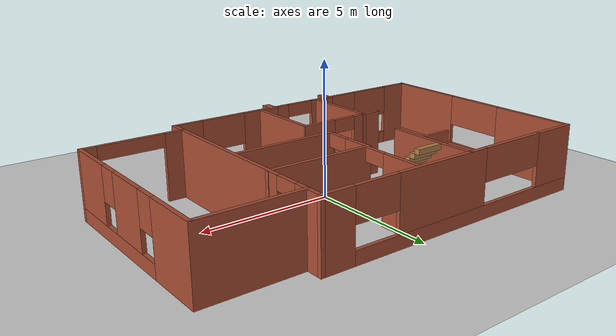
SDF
<sdf version="1.6">
 <world name="default">
  <plugin name="robotplugin" filename="libRobotPlugin.so"/>
  <light name="sun" type="directional">
   <pose>0 0 10 0 -0 0</pose>
   <diffuse>0.8 0.8 0.8 1</diffuse>
   <specular>0.2 0.2 0.2 1</specular>
   <attenuation>
    <range>1000</range>
    <constant>0.9</constant>
    <linear>0.01</linear>
    <quadratic>0.001</quadratic>
   </attenuation>
   <direction>-0.5 0.1 -0.9</direction>
  </light>
  <model name="ground_plane">
   <static>1</static>
   <link name="link">
    <collision name="collision">
     <geometry><plane><normal>0 0 1</normal><size>100 100</size></plane></geometry>
     <surface><friction><ode><mu>100</mu><mu2>50</mu2></ode></friction></surface>
    </collision>
    <visual name="visual">
     <cast_shadows>0</cast_shadows>
     <geometry><plane><normal>0 0 1</normal><size>100 100</size></plane></geometry>
     <material>
      <script><uri>file://media/materials/scripts/gazebo.material</uri><name>Gazebo/Grey</name></script>
     </material>
    </visual>
   </link>
  </model>
  <gravity>0 0 -9.8</gravity>
  <magnetic_field>6e-06 2.3e-05 -4.2e-05</magnetic_field>
  <atmosphere type="adiabatic"/>
  <physics name="default_physics" default="0" type="ode">
   <max_step_size>0.001</max_step_size>
   <real_time_factor>1</real_time_factor>
   <real_time_update_rate>1000</real_time_update_rate>
  </physics>
  <scene><ambient>0.4 0.4 0.4 1</ambient><background>0.7 0.7 0.7 1</background><shadows>1</shadows></scene>
  <spherical_coordinates>
   <surface_model>EARTH_WGS84</surface_model>
   <latitude_deg>0</latitude_deg>
   <longitude_deg>0</longitude_deg>
   <elevation>0</elevation>
   <heading_deg>0</heading_deg>
  </spherical_coordinates>
  <model name="myhome">
   <pose>0.076687 0.259312 0 0 -0 0</pose>
   <link name="Stairs_1">
    <visual name="Stairs_1_Visual_0">
     <pose>-1.59245 0.738736 0.096154 0 0 -3.14159</pose>
     <geometry><box><size>1 0.210437 0.192308</size></box></geometry>
     <material>
      <script><uri>file://media/materials/scripts/gazebo.material</uri><name>Gazebo/Wood</name></script>
      <ambient>1 1 1 1</ambient>
     </material>
     <meta><layer>0</layer></meta>
    </visual>
    <collision name="Stairs_1_Collision_0">
     <geometry><box><size>1 0.210437 0.192308</size></box></geometry>
     <pose>-1.59245 0.738736 0.096154 0 0 -3.14159</pose>
    </collision>
    <visual name="Stairs_1_Visual_1">
     <pose>-1.59245 0.949173 0.288462 0 0 -3.14159</pose>
     <geometry><box><size>1 0.210437 0.192308</size></box></geometry>
     <material>
      <script><uri>file://media/materials/scripts/gazebo.material</uri><name>Gazebo/Wood</name></script>
      <ambient>1 1 1 1</ambient>
     </material>
     <meta><layer>0</layer></meta>
    </visual>
    <collision name="Stairs_1_Collision_1">
     <geometry><box><size>1 0.210437 0.192308</size></box></geometry>
     <pose>-1.59245 0.949173 0.288462 0 0 -3.14159</pose>
    </collision>
    <visual name="Stairs_1_Visual_2">
     <pose>-1.59245 1.15961 0.480769 0 0 -3.14159</pose>
     <geometry><box><size>1 0.210437 0.192308</size></box></geometry>
     <material>
      <script><uri>file://media/materials/scripts/gazebo.material</uri><name>Gazebo/Wood</name></script>
      <ambient>1 1 1 1</ambient>
     </material>
     <meta><layer>0</layer></meta>
    </visual>
    <collision name="Stairs_1_Collision_2">
     <geometry><box><size>1 0.210437 0.192308</size></box></geometry>
     <pose>-1.59245 1.15961 0.480769 0 0 -3.14159</pose>
    </collision>
    <visual name="Stairs_1_Visual_3">
     <pose>-1.59245 1.37005 0.673077 0 0 -3.14159</pose>
     <geometry><box><size>1 0.210437 0.192308</size></box></geometry>
     <material>
      <script><uri>file://media/materials/scripts/gazebo.material</uri><name>Gazebo/Wood</name></script>
      <ambient>1 1 1 1</ambient>
     </material>
     <meta><layer>0</layer></meta>
    </visual>
    <collision name="Stairs_1_Collision_3">
     <geometry><box><size>1 0.210437 0.192308</size></box></geometry>
     <pose>-1.59245 1.37005 0.673077 0 0 -3.14159</pose>
    </collision>
    <visual name="Stairs_1_Visual_4">
     <pose>-1.59245 1.58048 0.865385 0 0 -3.14159</pose>
     <geometry><box><size>1 0.210437 0.192308</size></box></geometry>
     <material>
      <script><uri>file://media/materials/scripts/gazebo.material</uri><name>Gazebo/Wood</name></script>
      <ambient>1 1 1 1</ambient>
     </material>
     <meta><layer>0</layer></meta>
    </visual>
    <collision name="Stairs_1_Collision_4">
     <geometry><box><size>1 0.210437 0.192308</size></box></geometry>
     <pose>-1.59245 1.58048 0.865385 0 0 -3.14159</pose>
    </collision>
    <visual name="Stairs_1_Visual_5">
     <pose>-1.59245 1.79092 1.05769 0 0 -3.14159</pose>
     <geometry><box><size>1 0.210437 0.192308</size></box></geometry>
     <material>
      <script><uri>file://media/materials/scripts/gazebo.material</uri><name>Gazebo/Wood</name></script>
      <ambient>1 1 1 1</ambient>
     </material>
     <meta><layer>0</layer></meta>
    </visual>
    <collision name="Stairs_1_Collision_5">
     <geometry><box><size>1 0.210437 0.192308</size></box></geometry>
     <pose>-1.59245 1.79092 1.05769 0 0 -3.14159</pose>
    </collision>
    <visual name="Stairs_1_Visual_6">
     <pose>-1.59245 2.00136 1.25 0 0 -3.14159</pose>
     <geometry><box><size>1 0.210437 0.192308</size></box></geometry>
     <material>
      <script><uri>file://media/materials/scripts/gazebo.material</uri><name>Gazebo/Wood</name></script>
      <ambient>1 1 1 1</ambient>
     </material>
     <meta><layer>0</layer></meta>
    </visual>
    <collision name="Stairs_1_Collision_6">
     <geometry><box><size>1 0.210437 0.192308</size></box></geometry>
     <pose>-1.59245 2.00136 1.25 0 0 -3.14159</pose>
    </collision>
    <visual name="Stairs_1_Visual_7">
     <pose>-1.59245 2.2118 1.44231 0 0 -3.14159</pose>
     <geometry><box><size>1 0.210437 0.192308</size></box></geometry>
     <material>
      <script><uri>file://media/materials/scripts/gazebo.material</uri><name>Gazebo/Wood</name></script>
      <ambient>1 1 1 1</ambient>
     </material>
     <meta><layer>0</layer></meta>
    </visual>
    <collision name="Stairs_1_Collision_7">
     <geometry><box><size>1 0.210437 0.192308</size></box></geometry>
     <pose>-1.59245 2.2118 1.44231 0 0 -3.14159</pose>
    </collision>
    <visual name="Stairs_1_Visual_8">
     <pose>-1.59245 2.42223 1.63461 0 0 -3.14159</pose>
     <geometry><box><size>1 0.210437 0.192308</size></box></geometry>
     <material>
      <script><uri>file://media/materials/scripts/gazebo.material</uri><name>Gazebo/Wood</name></script>
      <ambient>1 1 1 1</ambient>
     </material>
     <meta><layer>0</layer></meta>
    </visual>
    <collision name="Stairs_1_Collision_8">
     <geometry><box><size>1 0.210437 0.192308</size></box></geometry>
     <pose>-1.59245 2.42223 1.63461 0 0 -3.14159</pose>
    </collision>
    <visual name="Stairs_1_Visual_9">
     <pose>-1.59245 2.63267 1.82692 0 0 -3.14159</pose>
     <geometry><box><size>1 0.210437 0.192308</size></box></geometry>
     <material>
      <script><uri>file://media/materials/scripts/gazebo.material</uri><name>Gazebo/Wood</name></script>
      <ambient>1 1 1 1</ambient>
     </material>
     <meta><layer>0</layer></meta>
    </visual>
    <collision name="Stairs_1_Collision_9">
     <geometry><box><size>1 0.210437 0.192308</size></box></geometry>
     <pose>-1.59245 2.63267 1.82692 0 0 -3.14159</pose>
    </collision>
    <visual name="Stairs_1_Visual_10">
     <pose>-1.59245 2.84311 2.01923 0 0 -3.14159</pose>
     <geometry><box><size>1 0.210437 0.192308</size></box></geometry>
     <material>
      <script><uri>file://media/materials/scripts/gazebo.material</uri><name>Gazebo/Wood</name></script>
      <ambient>1 1 1 1</ambient>
     </material>
     <meta><layer>0</layer></meta>
    </visual>
    <collision name="Stairs_1_Collision_10">
     <geometry><box><size>1 0.210437 0.192308</size></box></geometry>
     <pose>-1.59245 2.84311 2.01923 0 0 -3.14159</pose>
    </collision>
    <visual name="Stairs_1_Visual_11">
     <pose>-1.59245 3.05355 2.21154 0 0 -3.14159</pose>
     <geometry><box><size>1 0.210437 0.192308</size></box></geometry>
     <material>
      <script><uri>file://media/materials/scripts/gazebo.material</uri><name>Gazebo/Wood</name></script>
      <ambient>1 1 1 1</ambient>
     </material>
     <meta><layer>0</layer></meta>
    </visual>
    <collision name="Stairs_1_Collision_11">
     <geometry><box><size>1 0.210437 0.192308</size></box></geometry>
     <pose>-1.59245 3.05355 2.21154 0 0 -3.14159</pose>
    </collision>
    <visual name="Stairs_1_Visual_12">
     <pose>-1.59245 3.26398 2.40385 0 0 -3.14159</pose>
     <geometry><box><size>1 0.210437 0.192308</size></box></geometry>
     <material>
      <script><uri>file://media/materials/scripts/gazebo.material</uri><name>Gazebo/Wood</name></script>
      <ambient>1 1 1 1</ambient>
     </material>
     <meta><layer>0</layer></meta>
    </visual>
    <collision name="Stairs_1_Collision_12">
     <geometry><box><size>1 0.210437 0.192308</size></box></geometry>
     <pose>-1.59245 3.26398 2.40385 0 0 -3.14159</pose>
    </collision>
   </link>
   <link name="Wall_0">
    <pose>-7.35706 0.221072 0 0 0 -1.5708</pose>
    <visual name="Wall_0_Visual_0">
     <pose>-2.75946 0 1.25 0 -0 0</pose>
     <geometry><box><size>3.23108 0.15 2.5</size></box></geometry>
     <material>
      <script><uri>file://media/materials/scripts/gazebo.material</uri><name>Gazebo/Bricks</name></script>
      <ambient>1 1 1 1</ambient>
     </material>
     <meta><layer>0</layer></meta>
    </visual>
    <collision name="Wall_0_Collision_0">
     <geometry><box><size>3.23108 0.15 2.5</size></box></geometry>
     <pose>-2.75946 0 1.25 0 -0 0</pose>
    </collision>
    <visual name="Wall_0_Visual_1">
     <pose>1.61554 0 0.25 0 -0 0</pose>
     <geometry><box><size>5.51892 0.15 0.5</size></box></geometry>
     <material>
      <script><uri>file://media/materials/scripts/gazebo.material</uri><name>Gazebo/Bricks</name></script>
      <ambient>1 1 1 1</ambient>
     </material>
     <meta><layer>0</layer></meta>
    </visual>
    <collision name="Wall_0_Collision_1">
     <geometry><box><size>5.51892 0.15 0.5</size></box></geometry>
     <pose>1.61554 0 0.25 0 -0 0</pose>
    </collision>
    <visual name="Wall_0_Visual_2">
     <pose>2.7892 0 1.5 0 -0 0</pose>
     <geometry><box><size>3.1716 0.15 2</size></box></geometry>
     <material>
      <script><uri>file://media/materials/scripts/gazebo.material</uri><name>Gazebo/Bricks</name></script>
      <ambient>1 1 1 1</ambient>
     </material>
     <meta><layer>0</layer></meta>
    </visual>
    <collision name="Wall_0_Collision_2">
     <geometry><box><size>3.1716 0.15 2</size></box></geometry>
     <pose>2.7892 0 1.5 0 -0 0</pose>
    </collision>
    <visual name="Wall_0_Visual_3">
     <pose>0.029742 0 1.9 0 -0 0</pose>
     <geometry><box><size>2.34733 0.15 1.2</size></box></geometry>
     <material>
      <script><uri>file://media/materials/scripts/gazebo.material</uri><name>Gazebo/Bricks</name></script>
      <ambient>1 1 1 1</ambient>
     </material>
     <meta><layer>0</layer></meta>
    </visual>
    <collision name="Wall_0_Collision_3">
     <geometry><box><size>2.34733 0.15 1.2</size></box></geometry>
     <pose>0.029742 0 1.9 0 -0 0</pose>
    </collision>
   </link>
   <link name="Wall_1">
    <pose>-1.80706 -4.07893 0 0 -0 0</pose>
    <visual name="Wall_1_Visual_0">
     <pose>-5.03191 0 1.25 0 -0 0</pose>
     <geometry><box><size>1.18618 0.15 2.5</size></box></geometry>
     <material>
      <script><uri>file://media/materials/scripts/gazebo.material</uri><name>Gazebo/Bricks</name></script>
      <ambient>1 1 1 1</ambient>
     </material>
     <meta><layer>0</layer></meta>
    </visual>
    <collision name="Wall_1_Collision_0">
     <geometry><box><size>1.18618 0.15 2.5</size></box></geometry>
     <pose>-5.03191 0 1.25 0 -0 0</pose>
    </collision>
    <visual name="Wall_1_Visual_1">
     <pose>1.66015 0 1.25 0 -0 0</pose>
     <geometry><box><size>2.04206 0.15 2.5</size></box></geometry>
     <material>
      <script><uri>file://media/materials/scripts/gazebo.material</uri><name>Gazebo/Bricks</name></script>
      <ambient>1 1 1 1</ambient>
     </material>
     <meta><layer>0</layer></meta>
    </visual>
    <collision name="Wall_1_Collision_1">
     <geometry><box><size>2.04206 0.15 2.5</size></box></geometry>
     <pose>1.66015 0 1.25 0 -0 0</pose>
    </collision>
    <visual name="Wall_1_Visual_2">
     <pose>-2.46492 0 0.25 0 -0 0</pose>
     <geometry><box><size>3.94781 0.15 0.5</size></box></geometry>
     <material>
      <script><uri>file://media/materials/scripts/gazebo.material</uri><name>Gazebo/Bricks</name></script>
      <ambient>1 1 1 1</ambient>
     </material>
     <meta><layer>0</layer></meta>
    </visual>
    <collision name="Wall_1_Collision_2">
     <geometry><box><size>3.94781 0.15 0.5</size></box></geometry>
     <pose>-2.46492 0 0.25 0 -0 0</pose>
    </collision>
    <visual name="Wall_1_Visual_3">
     <pose>4.15309 0 0.25 0 -0 0</pose>
     <geometry><box><size>2.94382 0.15 0.5</size></box></geometry>
     <material>
      <script><uri>file://media/materials/scripts/gazebo.material</uri><name>Gazebo/Bricks</name></script>
      <ambient>1 1 1 1</ambient>
     </material>
     <meta><layer>0</layer></meta>
    </visual>
    <collision name="Wall_1_Collision_3">
     <geometry><box><size>2.94382 0.15 0.5</size></box></geometry>
     <pose>4.15309 0 0.25 0 -0 0</pose>
    </collision>
    <visual name="Wall_1_Visual_4">
     <pose>-1.61492 0 1.5 0 -0 0</pose>
     <geometry><box><size>2.24781 0.15 2</size></box></geometry>
     <material>
      <script><uri>file://media/materials/scripts/gazebo.material</uri><name>Gazebo/Bricks</name></script>
      <ambient>1 1 1 1</ambient>
     </material>
     <meta><layer>0</layer></meta>
    </visual>
    <collision name="Wall_1_Collision_4">
     <geometry><box><size>2.24781 0.15 2</size></box></geometry>
     <pose>-1.61492 0 1.5 0 -0 0</pose>
    </collision>
    <visual name="Wall_1_Visual_5">
     <pose>-1.61492 0 1.5 0 -0 0</pose>
     <geometry><box><size>2.24781 0.15 2</size></box></geometry>
     <material>
      <script><uri>file://media/materials/scripts/gazebo.material</uri><name>Gazebo/Bricks</name></script>
      <ambient>1 1 1 1</ambient>
     </material>
     <meta><layer>0</layer></meta>
    </visual>
    <collision name="Wall_1_Collision_5">
     <geometry><box><size>2.24781 0.15 2</size></box></geometry>
     <pose>-1.61492 0 1.5 0 -0 0</pose>
    </collision>
    <visual name="Wall_1_Visual_6">
     <pose>5.03809 0 1.5 0 -0 0</pose>
     <geometry><box><size>1.17382 0.15 2</size></box></geometry>
     <material>
      <script><uri>file://media/materials/scripts/gazebo.material</uri><name>Gazebo/Bricks</name></script>
      <ambient>1 1 1 1</ambient>
     </material>
     <meta><layer>0</layer></meta>
    </visual>
    <collision name="Wall_1_Collision_6">
     <geometry><box><size>1.17382 0.15 2</size></box></geometry>
     <pose>5.03809 0 1.5 0 -0 0</pose>
    </collision>
    <visual name="Wall_1_Visual_7">
     <pose>-3.58882 0 1.9 0 -0 0</pose>
     <geometry><box><size>1.7 0.15 1.2</size></box></geometry>
     <material>
      <script><uri>file://media/materials/scripts/gazebo.material</uri><name>Gazebo/Bricks</name></script>
      <ambient>1 1 1 1</ambient>
     </material>
     <meta><layer>0</layer></meta>
    </visual>
    <collision name="Wall_1_Collision_7">
     <geometry><box><size>1.7 0.15 1.2</size></box></geometry>
     <pose>-3.58882 0 1.9 0 -0 0</pose>
    </collision>
    <visual name="Wall_1_Visual_8">
     <pose>3.56618 0 1.9 0 -0 0</pose>
     <geometry><box><size>1.77 0.15 1.2</size></box></geometry>
     <material>
      <script><uri>file://media/materials/scripts/gazebo.material</uri><name>Gazebo/Bricks</name></script>
      <ambient>1 1 1 1</ambient>
     </material>
     <meta><layer>0</layer></meta>
    </visual>
    <collision name="Wall_1_Collision_8">
     <geometry><box><size>1.77 0.15 1.2</size></box></geometry>
     <pose>3.56618 0 1.9 0 -0 0</pose>
    </collision>
    <visual name="Wall_1_Visual_9">
     <pose>0.074052 0 2.25 0 -0 0</pose>
     <geometry><box><size>1.13013 0.15 0.5</size></box></geometry>
     <material>
      <script><uri>file://media/materials/scripts/gazebo.material</uri><name>Gazebo/Bricks</name></script>
      <ambient>1 1 1 1</ambient>
     </material>
     <meta><layer>0</layer></meta>
    </visual>
    <collision name="Wall_1_Collision_9">
     <geometry><box><size>1.13013 0.15 0.5</size></box></geometry>
     <pose>0.074052 0 2.25 0 -0 0</pose>
    </collision>
    <visual name="Wall_1_Visual_10">
     <pose>0.074052 0 2.25 0 -0 0</pose>
     <geometry><box><size>1.13013 0.15 0.5</size></box></geometry>
     <material>
      <script><uri>file://media/materials/scripts/gazebo.material</uri><name>Gazebo/Bricks</name></script>
      <ambient>1 1 1 1</ambient>
     </material>
     <meta><layer>0</layer></meta>
    </visual>
    <collision name="Wall_1_Collision_10">
     <geometry><box><size>1.13013 0.15 0.5</size></box></geometry>
     <pose>0.074052 0 2.25 0 -0 0</pose>
    </collision>
   </link>
   <link name="Wall_11">
    <collision name="Wall_11_Collision">
     <geometry><box><size>4 0.15 2.5</size></box></geometry>
     <pose>0 0 1.25 0 -0 0</pose>
    </collision>
    <visual name="Wall_11_Visual">
     <pose>0 0 1.25 0 -0 0</pose>
     <geometry><box><size>4 0.15 2.5</size></box></geometry>
     <material>
      <script><uri>file://media/materials/scripts/gazebo.material</uri><name>Gazebo/Bricks</name></script>
      <ambient>1 1 1 1</ambient>
     </material>
     <meta><layer>0</layer></meta>
    </visual>
    <pose>1.83721 2.0059 0 0 -0 3.14159</pose>
   </link>
   <link name="Wall_12">
    <pose>-0.087787 1.0809 0 0 0 -1.5708</pose>
    <visual name="Wall_12_Visual_0">
     <pose>-0.434317 0 1.25 0 -0 0</pose>
     <geometry><box><size>1.13137 0.15 2.5</size></box></geometry>
     <material>
      <script><uri>file://media/materials/scripts/gazebo.material</uri><name>Gazebo/Bricks</name></script>
      <ambient>1 1 1 1</ambient>
     </material>
     <meta><layer>0</layer></meta>
    </visual>
    <collision name="Wall_12_Collision_0">
     <geometry><box><size>1.13137 0.15 2.5</size></box></geometry>
     <pose>-0.434317 0 1.25 0 -0 0</pose>
    </collision>
    <visual name="Wall_12_Visual_1">
     <pose>0.565683 0 2.25 0 -0 0</pose>
     <geometry><box><size>0.868634 0.15 0.5</size></box></geometry>
     <material>
      <script><uri>file://media/materials/scripts/gazebo.material</uri><name>Gazebo/Bricks</name></script>
      <ambient>1 1 1 1</ambient>
     </material>
     <meta><layer>0</layer></meta>
    </visual>
    <collision name="Wall_12_Collision_1">
     <geometry><box><size>0.868634 0.15 0.5</size></box></geometry>
     <pose>0.565683 0 2.25 0 -0 0</pose>
    </collision>
   </link>
   <link name="Wall_16">
    <collision name="Wall_16_Collision">
     <geometry><box><size>3.5 0.15 2.5</size></box></geometry>
     <pose>0 0 1.25 0 -0 0</pose>
    </collision>
    <visual name="Wall_16_Visual">
     <pose>0 0 1.25 0 -0 0</pose>
     <geometry><box><size>3.5 0.15 2.5</size></box></geometry>
     <material>
      <script><uri>file://media/materials/scripts/gazebo.material</uri><name>Gazebo/Bricks</name></script>
      <ambient>1 1 1 1</ambient>
     </material>
     <meta><layer>0</layer></meta>
    </visual>
    <pose>-2.20226 2.84365 0 0 0 -1.5708</pose>
   </link>
   <link name="Wall_18">
    <collision name="Wall_18_Collision">
     <geometry><box><size>3 0.15 1</size></box></geometry>
     <pose>0 0 0.5 0 -0 0</pose>
    </collision>
    <visual name="Wall_18_Visual">
     <pose>0 0 0.5 0 -0 0</pose>
     <geometry><box><size>3 0.15 1</size></box></geometry>
     <material>
      <script><uri>file://media/materials/scripts/gazebo.material</uri><name>Gazebo/Bricks</name></script>
      <ambient>1 1 1 1</ambient>
     </material>
     <meta><layer>0</layer></meta>
    </visual>
    <pose>-5.93869 -1.15731 0 0 -0 0</pose>
   </link>
   <link name="Wall_2">
    <pose>3.74294 0.221072 0 0 -0 1.5708</pose>
    <visual name="Wall_2_Visual_0">
     <pose>-1.04791 0 1.25 0 -0 0</pose>
     <geometry><box><size>6.65418 0.15 2.5</size></box></geometry>
     <material>
      <script><uri>file://media/materials/scripts/gazebo.material</uri><name>Gazebo/Bricks</name></script>
      <ambient>1 1 1 1</ambient>
     </material>
     <meta><layer>0</layer></meta>
    </visual>
    <collision name="Wall_2_Collision_0">
     <geometry><box><size>6.65418 0.15 2.5</size></box></geometry>
     <pose>-1.04791 0 1.25 0 -0 0</pose>
    </collision>
    <visual name="Wall_2_Visual_1">
     <pose>3.77709 0 1.25 0 -0 0</pose>
     <geometry><box><size>1.19582 0.15 2.5</size></box></geometry>
     <material>
      <script><uri>file://media/materials/scripts/gazebo.material</uri><name>Gazebo/Bricks</name></script>
      <ambient>1 1 1 1</ambient>
     </material>
     <meta><layer>0</layer></meta>
    </visual>
    <collision name="Wall_2_Collision_1">
     <geometry><box><size>1.19582 0.15 2.5</size></box></geometry>
     <pose>3.77709 0 1.25 0 -0 0</pose>
    </collision>
    <visual name="Wall_2_Visual_2">
     <pose>2.72918 0 2.25 0 -0 0</pose>
     <geometry><box><size>0.9 0.15 0.5</size></box></geometry>
     <material>
      <script><uri>file://media/materials/scripts/gazebo.material</uri><name>Gazebo/Bricks</name></script>
      <ambient>1 1 1 1</ambient>
     </material>
     <meta><layer>0</layer></meta>
    </visual>
    <collision name="Wall_2_Collision_2">
     <geometry><box><size>0.9 0.15 0.5</size></box></geometry>
     <pose>2.72918 0 2.25 0 -0 0</pose>
    </collision>
   </link>
   <link name="Wall_20">
    <pose>-1.57843 -1.1575 0 0 -0 0</pose>
    <visual name="Wall_20_Visual_0">
     <pose>-1.13105 0 1.25 0 -0 0</pose>
     <geometry><box><size>1.2379 0.15 2.5</size></box></geometry>
     <material>
      <script><uri>file://media/materials/scripts/gazebo.material</uri><name>Gazebo/Bricks</name></script>
      <ambient>1 1 1 1</ambient>
     </material>
     <meta><layer>0</layer></meta>
    </visual>
    <collision name="Wall_20_Collision_0">
     <geometry><box><size>1.2379 0.15 2.5</size></box></geometry>
     <pose>-1.13105 0 1.25 0 -0 0</pose>
    </collision>
    <visual name="Wall_20_Visual_1">
     <pose>1.06895 0 1.25 0 -0 0</pose>
     <geometry><box><size>1.3621 0.15 2.5</size></box></geometry>
     <material>
      <script><uri>file://media/materials/scripts/gazebo.material</uri><name>Gazebo/Bricks</name></script>
      <ambient>1 1 1 1</ambient>
     </material>
     <meta><layer>0</layer></meta>
    </visual>
    <collision name="Wall_20_Collision_1">
     <geometry><box><size>1.3621 0.15 2.5</size></box></geometry>
     <pose>1.06895 0 1.25 0 -0 0</pose>
    </collision>
    <visual name="Wall_20_Visual_2">
     <pose>-0.062103 0 2.25 0 -0 0</pose>
     <geometry><box><size>0.9 0.15 0.5</size></box></geometry>
     <material>
      <script><uri>file://media/materials/scripts/gazebo.material</uri><name>Gazebo/Bricks</name></script>
      <ambient>1 1 1 1</ambient>
     </material>
     <meta><layer>0</layer></meta>
    </visual>
    <collision name="Wall_20_Collision_2">
     <geometry><box><size>0.9 0.15 0.5</size></box></geometry>
     <pose>-0.062103 0 2.25 0 -0 0</pose>
    </collision>
   </link>
   <link name="Wall_22">
    <collision name="Wall_22_Collision">
     <geometry><box><size>3 0.15 2.5</size></box></geometry>
     <pose>0 0 1.25 0 -0 0</pose>
    </collision>
    <visual name="Wall_22_Visual">
     <pose>0 0 1.25 0 -0 0</pose>
     <geometry><box><size>3 0.15 2.5</size></box></geometry>
     <material>
      <script><uri>file://media/materials/scripts/gazebo.material</uri><name>Gazebo/Bricks</name></script>
      <ambient>1 1 1 1</ambient>
     </material>
     <meta><layer>0</layer></meta>
    </visual>
    <pose>-2.58881 -2.54752 0 0 0 -1.5708</pose>
   </link>
   <link name="Wall_24">
    <collision name="Wall_24_Collision">
     <geometry><box><size>0.64952 0.3 2.5</size></box></geometry>
     <pose>0 0 1.25 0 -0 0</pose>
    </collision>
    <visual name="Wall_24_Visual">
     <pose>0 0 1.25 0 -0 0</pose>
     <geometry><box><size>0.64952 0.3 2.5</size></box></geometry>
     <material>
      <script><uri>file://media/materials/scripts/gazebo.material</uri><name>Gazebo/Bricks</name></script>
      <ambient>1 1 1 1</ambient>
     </material>
     <meta><layer>0</layer></meta>
    </visual>
    <pose>-3.18369 -4.27131 0 0 0 -1.5708</pose>
   </link>
   <link name="Wall_26">
    <collision name="Wall_26_Collision">
     <geometry><box><size>0.65003 0.3 2.5</size></box></geometry>
     <pose>0 0 1.25 0 -0 0</pose>
    </collision>
    <visual name="Wall_26_Visual">
     <pose>0 0 1.25 0 -0 0</pose>
     <geometry><box><size>0.65003 0.3 2.5</size></box></geometry>
     <material>
      <script><uri>file://media/materials/scripts/gazebo.material</uri><name>Gazebo/Bricks</name></script>
      <ambient>1 1 1 1</ambient>
     </material>
     <meta><layer>0</layer></meta>
    </visual>
    <pose>-0.454687 -4.25331 0 0 0 -1.5708</pose>
   </link>
   <link name="Wall_3">
    <pose>-1.80706 4.52107 0 0 -0 3.14159</pose>
    <visual name="Wall_3_Visual_0">
     <pose>-5.00476 0 1.25 0 -0 0</pose>
     <geometry><box><size>1.24049 0.15 2.5</size></box></geometry>
     <material>
      <script><uri>file://media/materials/scripts/gazebo.material</uri><name>Gazebo/Bricks</name></script>
      <ambient>1 1 1 1</ambient>
     </material>
     <meta><layer>0</layer></meta>
    </visual>
    <collision name="Wall_3_Collision_0">
     <geometry><box><size>1.24049 0.15 2.5</size></box></geometry>
     <pose>-5.00476 0 1.25 0 -0 0</pose>
    </collision>
    <visual name="Wall_3_Visual_1">
     <pose>0.620243 0 0.25 0 -0 0</pose>
     <geometry><box><size>10.0095 0.15 0.5</size></box></geometry>
     <material>
      <script><uri>file://media/materials/scripts/gazebo.material</uri><name>Gazebo/Bricks</name></script>
      <ambient>1 1 1 1</ambient>
     </material>
     <meta><layer>0</layer></meta>
    </visual>
    <collision name="Wall_3_Collision_1">
     <geometry><box><size>10.0095 0.15 0.5</size></box></geometry>
     <pose>0.620243 0 0.25 0 -0 0</pose>
    </collision>
    <visual name="Wall_3_Visual_2">
     <pose>-0.760259 0 1.5 0 -0 0</pose>
     <geometry><box><size>3.82346 0.15 2</size></box></geometry>
     <material>
      <script><uri>file://media/materials/scripts/gazebo.material</uri><name>Gazebo/Bricks</name></script>
      <ambient>1 1 1 1</ambient>
     </material>
     <meta><layer>0</layer></meta>
    </visual>
    <collision name="Wall_3_Collision_2">
     <geometry><box><size>3.82346 0.15 2</size></box></geometry>
     <pose>-0.760259 0 1.5 0 -0 0</pose>
    </collision>
    <visual name="Wall_3_Visual_3">
     <pose>4.74639 0 1.5 0 -0 0</pose>
     <geometry><box><size>1.75723 0.15 2</size></box></geometry>
     <material>
      <script><uri>file://media/materials/scripts/gazebo.material</uri><name>Gazebo/Bricks</name></script>
      <ambient>1 1 1 1</ambient>
     </material>
     <meta><layer>0</layer></meta>
    </visual>
    <collision name="Wall_3_Collision_3">
     <geometry><box><size>1.75723 0.15 2</size></box></geometry>
     <pose>4.74639 0 1.5 0 -0 0</pose>
    </collision>
    <visual name="Wall_3_Visual_4">
     <pose>-3.52825 0 1.9 0 -0 0</pose>
     <geometry><box><size>1.71253 0.15 1.2</size></box></geometry>
     <material>
      <script><uri>file://media/materials/scripts/gazebo.material</uri><name>Gazebo/Bricks</name></script>
      <ambient>1 1 1 1</ambient>
     </material>
     <meta><layer>0</layer></meta>
    </visual>
    <collision name="Wall_3_Collision_4">
     <geometry><box><size>1.71253 0.15 1.2</size></box></geometry>
     <pose>-3.52825 0 1.9 0 -0 0</pose>
    </collision>
    <visual name="Wall_3_Visual_5">
     <pose>2.50962 0 1.9 0 -0 0</pose>
     <geometry><box><size>2.7163 0.15 1.2</size></box></geometry>
     <material>
      <script><uri>file://media/materials/scripts/gazebo.material</uri><name>Gazebo/Bricks</name></script>
      <ambient>1 1 1 1</ambient>
     </material>
     <meta><layer>0</layer></meta>
    </visual>
    <collision name="Wall_3_Collision_5">
     <geometry><box><size>2.7163 0.15 1.2</size></box></geometry>
     <pose>2.50962 0 1.9 0 -0 0</pose>
    </collision>
   </link>
   <link name="Wall_30">
    <collision name="Wall_30_Collision">
     <geometry><box><size>3 0.15 2.5</size></box></geometry>
     <pose>0 0 1.25 0 -0 0</pose>
    </collision>
    <visual name="Wall_30_Visual">
     <pose>0 0 1.25 0 -0 0</pose>
     <geometry><box><size>3 0.15 2.5</size></box></geometry>
     <material>
      <script><uri>file://media/materials/scripts/gazebo.material</uri><name>Gazebo/Bricks</name></script>
      <ambient>1 1 1 1</ambient>
     </material>
     <meta><layer>0</layer></meta>
    </visual>
    <pose>0.102788 -2.63497 0 0 0 -1.5708</pose>
   </link>
   <link name="Wall_32">
    <pose>-0.010979 3.33187 0 0 0 -1.5708</pose>
    <visual name="Wall_32_Visual_0">
     <pose>-0.423076 0 1.25 0 -0 0</pose>
     <geometry><box><size>1.65385 0.15 2.5</size></box></geometry>
     <material>
      <script><uri>file://media/materials/scripts/gazebo.material</uri><name>Gazebo/Bricks</name></script>
      <ambient>1 1 1 1</ambient>
     </material>
     <meta><layer>0</layer></meta>
    </visual>
    <collision name="Wall_32_Collision_0">
     <geometry><box><size>1.65385 0.15 2.5</size></box></geometry>
     <pose>-0.423076 0 1.25 0 -0 0</pose>
    </collision>
    <visual name="Wall_32_Visual_1">
     <pose>0.826924 0 2.25 0 -0 0</pose>
     <geometry><box><size>0.846153 0.15 0.5</size></box></geometry>
     <material>
      <script><uri>file://media/materials/scripts/gazebo.material</uri><name>Gazebo/Bricks</name></script>
      <ambient>1 1 1 1</ambient>
     </material>
     <meta><layer>0</layer></meta>
    </visual>
    <collision name="Wall_32_Collision_1">
     <geometry><box><size>0.846153 0.15 0.5</size></box></geometry>
     <pose>0.826924 0 2.25 0 -0 0</pose>
    </collision>
   </link>
   <link name="Wall_5">
    <collision name="Wall_5_Collision">
     <geometry><box><size>3.75 0.15 2.5</size></box></geometry>
     <pose>0 0 1.25 0 -0 0</pose>
    </collision>
    <visual name="Wall_5_Visual">
     <pose>0 0 1.25 0 -0 0</pose>
     <geometry><box><size>3.75 0.15 2.5</size></box></geometry>
     <material>
      <script><uri>file://media/materials/scripts/gazebo.material</uri><name>Gazebo/Bricks</name></script>
      <ambient>1 1 1 1</ambient>
     </material>
     <meta><layer>0</layer></meta>
    </visual>
    <pose>5.56369 3.8997 0 0 -0 0</pose>
   </link>
   <link name="Wall_6">
    <pose>7.36369 0.224701 0 0 0 -1.5708</pose>
    <visual name="Wall_6_Visual_0">
     <pose>-2.66497 0 1.25 0 -0 0</pose>
     <geometry><box><size>2.17005 0.15 2.5</size></box></geometry>
     <material>
      <script><uri>file://media/materials/scripts/gazebo.material</uri><name>Gazebo/Bricks</name></script>
      <ambient>1 1 1 1</ambient>
     </material>
     <meta><layer>0</layer></meta>
    </visual>
    <collision name="Wall_6_Collision_0">
     <geometry><box><size>2.17005 0.15 2.5</size></box></geometry>
     <pose>-2.66497 0 1.25 0 -0 0</pose>
    </collision>
    <visual name="Wall_6_Visual_1">
     <pose>1.08503 0 0.25 0 -0 0</pose>
     <geometry><box><size>5.32995 0.15 0.5</size></box></geometry>
     <material>
      <script><uri>file://media/materials/scripts/gazebo.material</uri><name>Gazebo/Bricks</name></script>
      <ambient>1 1 1 1</ambient>
     </material>
     <meta><layer>0</layer></meta>
    </visual>
    <collision name="Wall_6_Collision_1">
     <geometry><box><size>5.32995 0.15 0.5</size></box></geometry>
     <pose>1.08503 0 0.25 0 -0 0</pose>
    </collision>
    <visual name="Wall_6_Visual_2">
     <pose>0.087208 0 1.5 0 -0 0</pose>
     <geometry><box><size>1.73431 0.15 2</size></box></geometry>
     <material>
      <script><uri>file://media/materials/scripts/gazebo.material</uri><name>Gazebo/Bricks</name></script>
      <ambient>1 1 1 1</ambient>
     </material>
     <meta><layer>0</layer></meta>
    </visual>
    <collision name="Wall_6_Collision_2">
     <geometry><box><size>1.73431 0.15 2</size></box></geometry>
     <pose>0.087208 0 1.5 0 -0 0</pose>
    </collision>
    <visual name="Wall_6_Visual_3">
     <pose>2.75218 0 1.5 0 -0 0</pose>
     <geometry><box><size>1.99564 0.15 2</size></box></geometry>
     <material>
      <script><uri>file://media/materials/scripts/gazebo.material</uri><name>Gazebo/Bricks</name></script>
      <ambient>1 1 1 1</ambient>
     </material>
     <meta><layer>0</layer></meta>
    </visual>
    <collision name="Wall_6_Collision_3">
     <geometry><box><size>1.99564 0.15 2</size></box></geometry>
     <pose>2.75218 0 1.5 0 -0 0</pose>
    </collision>
    <visual name="Wall_6_Visual_4">
     <pose>-1.17995 0 1.9 0 -0 0</pose>
     <geometry><box><size>0.8 0.15 1.2</size></box></geometry>
     <material>
      <script><uri>file://media/materials/scripts/gazebo.material</uri><name>Gazebo/Bricks</name></script>
      <ambient>1 1 1 1</ambient>
     </material>
     <meta><layer>0</layer></meta>
    </visual>
    <collision name="Wall_6_Collision_4">
     <geometry><box><size>0.8 0.15 1.2</size></box></geometry>
     <pose>-1.17995 0 1.9 0 -0 0</pose>
    </collision>
    <visual name="Wall_6_Visual_5">
     <pose>1.35436 0 1.9 0 -0 0</pose>
     <geometry><box><size>0.8 0.15 1.2</size></box></geometry>
     <material>
      <script><uri>file://media/materials/scripts/gazebo.material</uri><name>Gazebo/Bricks</name></script>
      <ambient>1 1 1 1</ambient>
     </material>
     <meta><layer>0</layer></meta>
    </visual>
    <collision name="Wall_6_Collision_5">
     <geometry><box><size>0.8 0.15 1.2</size></box></geometry>
     <pose>1.35436 0 1.9 0 -0 0</pose>
    </collision>
   </link>
   <link name="Wall_7">
    <pose>5.56369 -3.4503 0 0 -0 3.14159</pose>
    <visual name="Wall_7_Visual_0">
     <pose>-1.58316 0 1.25 0 -0 0</pose>
     <geometry><box><size>0.583677 0.15 2.5</size></box></geometry>
     <material>
      <script><uri>file://media/materials/scripts/gazebo.material</uri><name>Gazebo/Bricks</name></script>
      <ambient>1 1 1 1</ambient>
     </material>
     <meta><layer>0</layer></meta>
    </visual>
    <collision name="Wall_7_Collision_0">
     <geometry><box><size>0.583677 0.15 2.5</size></box></geometry>
     <pose>-1.58316 0 1.25 0 -0 0</pose>
    </collision>
    <visual name="Wall_7_Visual_1">
     <pose>1.49358 0 1.25 0 -0 0</pose>
     <geometry><box><size>0.762834 0.15 2.5</size></box></geometry>
     <material>
      <script><uri>file://media/materials/scripts/gazebo.material</uri><name>Gazebo/Bricks</name></script>
      <ambient>1 1 1 1</ambient>
     </material>
     <meta><layer>0</layer></meta>
    </visual>
    <collision name="Wall_7_Collision_1">
     <geometry><box><size>0.762834 0.15 2.5</size></box></geometry>
     <pose>1.49358 0 1.25 0 -0 0</pose>
    </collision>
    <visual name="Wall_7_Visual_2">
     <pose>-0.089579 0 2.25 0 -0 0</pose>
     <geometry><box><size>2.40349 0.15 0.5</size></box></geometry>
     <material>
      <script><uri>file://media/materials/scripts/gazebo.material</uri><name>Gazebo/Bricks</name></script>
      <ambient>1 1 1 1</ambient>
     </material>
     <meta><layer>0</layer></meta>
    </visual>
    <collision name="Wall_7_Collision_2">
     <geometry><box><size>2.40349 0.15 0.5</size></box></geometry>
     <pose>-0.089579 0 2.25 0 -0 0</pose>
    </collision>
   </link>
   <link name="Wall_9">
    <collision name="Wall_9_Collision">
     <geometry><box><size>4 0.15 2.5</size></box></geometry>
     <pose>0 0 1.25 0 -0 0</pose>
    </collision>
    <visual name="Wall_9_Visual">
     <pose>0 0 1.25 0 -0 0</pose>
     <geometry><box><size>4 0.15 2.5</size></box></geometry>
     <material>
      <script><uri>file://media/materials/scripts/gazebo.material</uri><name>Gazebo/Bricks</name></script>
      <ambient>1 1 1 1</ambient>
     </material>
     <meta><layer>0</layer></meta>
    </visual>
    <pose>1.81076 0.008929 0 0 -0 3.14159</pose>
   </link>
   <static>1</static>
  </model>
  <model name="my_robot">
   <link name="robot_footprint">
    <inertial>
     <pose>0.001325 0 0 0 -0 0</pose>
     <mass>15.1</mass>
     <inertia>
      <ixx>0.100001</ixx>
      <ixy>0</ixy>
      <ixz>0</ixz>
      <iyy>0.103975</iyy>
      <iyz>0</iyz>
      <izz>0.103975</izz>
     </inertia>
    </inertial>
    <collision name="robot_footprint_fixed_joint_lump__collision_collision">
     <geometry><box><size>0.4 0.2 0.1</size></box></geometry>
    </collision>
    <collision name="robot_footprint_fixed_joint_lump__back_caster_collision_collision_1">
     <pose>-0.15 0 -0.05 0 -0 0</pose>
     <geometry><sphere><radius>0.0499</radius></sphere></geometry>
    </collision>
    <collision name="robot_footprint_fixed_joint_lump__front_caster_collision_collision_2">
     <pose>0.15 0 -0.05 0 -0 0</pose>
     <geometry><sphere><radius>0.0499</radius></sphere></geometry>
    </collision>
    <collision name="robot_footprint_fixed_joint_lump__camera_collision_collision_3">
     <pose>0.4 -0.05 0.05 -0 1.5707 1.5707</pose>
     <geometry><cylinder><length>0.05</length><radius>0.1</radius></cylinder></geometry>
    </collision>
    <visual name="robot_footprint_fixed_joint_lump__chassis_visual_visual">
     <geometry><box><size>0.4 0.2 0.1</size></box></geometry>
    </visual>
    <visual name="robot_footprint_fixed_joint_lump__back_caster_visual_visual_1">
     <pose>-0.15 0 -0.05 0 -0 0</pose>
     <geometry><sphere><radius>0.05</radius></sphere></geometry>
    </visual>
    <visual name="robot_footprint_fixed_joint_lump__front_caster_visual_visual_2">
     <pose>0.15 0 -0.05 0 -0 0</pose>
     <geometry><sphere><radius>0.05</radius></sphere></geometry>
    </visual>
    <visual name="robot_footprint_fixed_joint_lump__camera_visual_visual_3">
     <pose>0.4 -0.05 0.05 -0 1.5707 1.5707</pose>
     <geometry><box><size>0.05 0.05 0.05</size></box></geometry>
    </visual>
   </link>
   <link name="left_wheel">
    <pose>0 0.15 0 0 -0 0</pose>
    <inertial>
     <pose>0 0 0 -0 1.5707 1.5707</pose>
     <mass>5</mass>
     <inertia><ixx>0.1</ixx><ixy>0</ixy><ixz>0</ixz><iyy>0.1</iyy><iyz>0</iyz><izz>0.1</izz></inertia>
    </inertial>
    <collision name="left_wheel_collision_collision">
     <pose>0 0.1 0.05 -0 1.5707 1.5707</pose>
     <geometry><cylinder><length>0.05</length><radius>0.1</radius></cylinder></geometry>
    </collision>
    <visual name="left_wheel_visual_visual">
     <pose>0 0.1 0.05 -0 1.5707 1.5707</pose>
     <geometry><cylinder><length>0.05</length><radius>0.1</radius></cylinder></geometry>
     <material>
      <script><name>Gazebo/Green</name><uri>file://media/materials/scripts/gazebo.material</uri></script>
     </material>
    </visual>
   </link>
   <joint name="left_wheel_hinge" type="revolute">
    <child>left_wheel</child>
    <parent>robot_footprint</parent>
    <axis>
     <xyz>0 1 0</xyz>
     <limit><lower>-1e+16</lower><upper>1e+16</upper></limit>
     <dynamics>
      <damping>1</damping>
      <friction>1</friction>
      <spring_reference>0</spring_reference>
      <spring_stiffness>0</spring_stiffness>
     </dynamics>
     <use_parent_model_frame>1</use_parent_model_frame>
    </axis>
   </joint>
   <link name="right_wheel">
    <pose>0 -0.15 0 0 -0 0</pose>
    <inertial>
     <pose>0 0 0 -0 1.5707 1.5707</pose>
     <mass>5</mass>
     <inertia><ixx>0.1</ixx><ixy>0</ixy><ixz>0</ixz><iyy>0.1</iyy><iyz>0</iyz><izz>0.1</izz></inertia>
    </inertial>
    <collision name="right_wheel_collision_collision">
     <pose>0 -0.1 0.05 -0 1.5707 1.5707</pose>
     <geometry><cylinder><length>0.05</length><radius>0.1</radius></cylinder></geometry>
    </collision>
    <visual name="right_wheel_visual_visual">
     <pose>0 -0.1 0.05 -0 1.5707 1.5707</pose>
     <geometry><cylinder><length>0.05</length><radius>0.1</radius></cylinder></geometry>
     <material>
      <script><name>Gazebo/Green</name><uri>file://media/materials/scripts/gazebo.material</uri></script>
     </material>
    </visual>
   </link>
   <joint name="right_wheel_hinge" type="revolute">
    <child>right_wheel</child>
    <parent>robot_footprint</parent>
    <axis>
     <xyz>0 1 0</xyz>
     <limit><lower>-1e+16</lower><upper>1e+16</upper></limit>
     <dynamics>
      <damping>1</damping>
      <friction>1</friction>
      <spring_reference>0</spring_reference>
      <spring_stiffness>0</spring_stiffness>
     </dynamics>
     <use_parent_model_frame>1</use_parent_model_frame>
    </axis>
   </joint>
   <pose>-1.73991 -5.74739 0.099326 0.151023 3.1e-05 0.915497</pose>
  </model>
  <model name="my_ball">
   <link name="link">
    <inertial>
     <mass>1</mass>
     <inertia><ixx>0.1</ixx><ixy>0</ixy><ixz>0</ixz><iyy>0.1</iyy><iyz>0</iyz><izz>0.1</izz></inertia>
    </inertial>
    <visual name="visual">
     <geometry><sphere><radius>0.1</radius></sphere></geometry>
     <material>
      <script><name>Gazebo/Grey</name><uri>file://media/materials/scripts/gazebo.material</uri></script>
      <ambient>1 1 1 1</ambient>
      <diffuse>0.7 0.7 0.7 1</diffuse>
      <specular>0.01 0.01 0.01 1</specular>
      <emissive>0 0 0 1</emissive>
      <shader type="vertex"><normal_map>__default__</normal_map></shader>
     </material>
    </visual>
    <collision name="collision">
     <geometry><sphere><radius>0.1</radius></sphere></geometry>
     <surface>
      <friction>
       <ode><mu>1</mu><mu2>1</mu2><fdir1>0 0 0</fdir1><slip1>0</slip1><slip2>0</slip2></ode>
       <torsional>
        <coefficient>1</coefficient>
        <patch_radius>0</patch_radius>
        <surface_radius>0</surface_radius>
        <use_patch_radius>1</use_patch_radius>
        <ode><slip>0</slip></ode>
       </torsional>
      </friction>
      <bounce><restitution_coefficient>0</restitution_coefficient><threshold>1e+06</threshold></bounce>
      <contact>
       <collide_without_contact>0</collide_without_contact>
       <collide_without_contact_bitmask>1</collide_without_contact_bitmask>
       <collide_bitmask>1</collide_bitmask>
       <ode>
        <soft_cfm>0</soft_cfm>
        <soft_erp>0.2</soft_erp>
        <kp>1e+13</kp>
        <kd>1</kd>
        <max_vel>0.01</max_vel>
        <min_depth>0</min_depth>
       </ode>
       <bullet>
        <split_impulse>1</split_impulse>
        <split_impulse_penetration_threshold>-0.01</split_impulse_penetration_threshold>
        <soft_cfm>0</soft_cfm>
        <soft_erp>0.2</soft_erp>
        <kp>1e+13</kp>
        <kd>1</kd>
       </bullet>
      </contact>
     </surface>
    </collision>
   </link>
   <static>0</static>
   <pose>0.855891 -6.3679 0.1 0 -0 0</pose>
  </model>
 </world>
</sdf>
